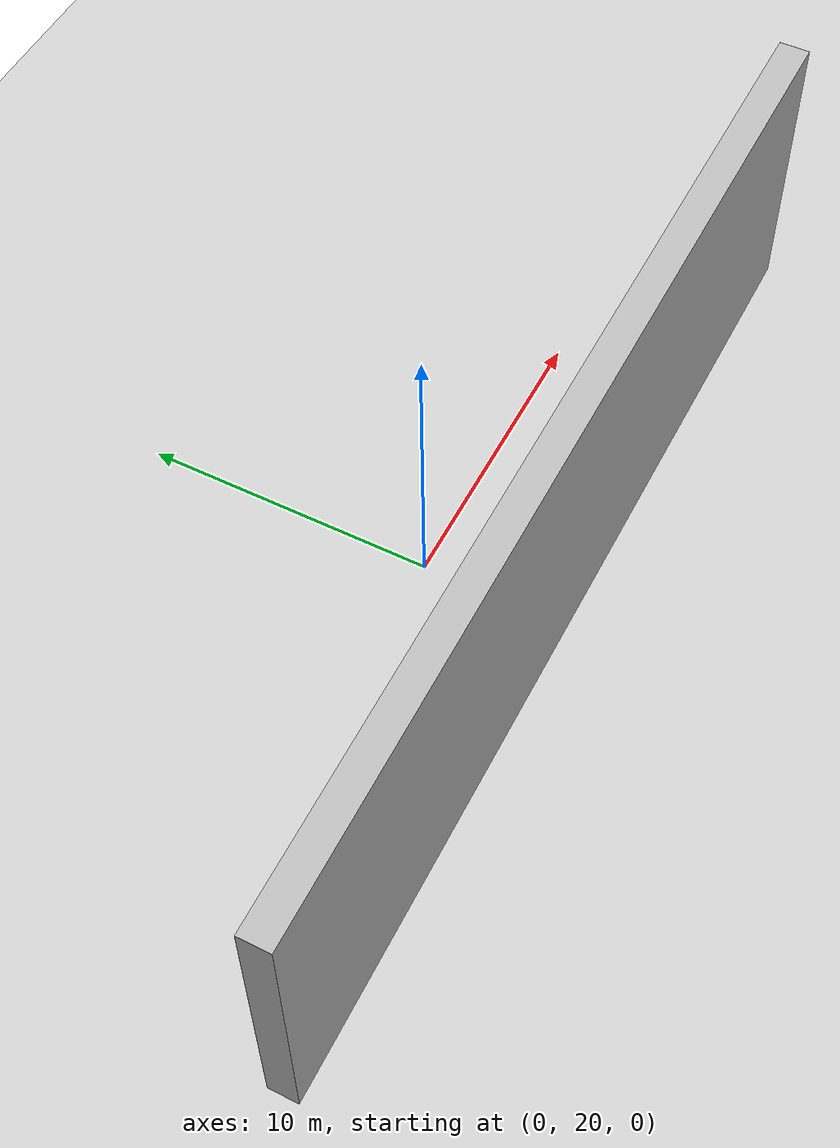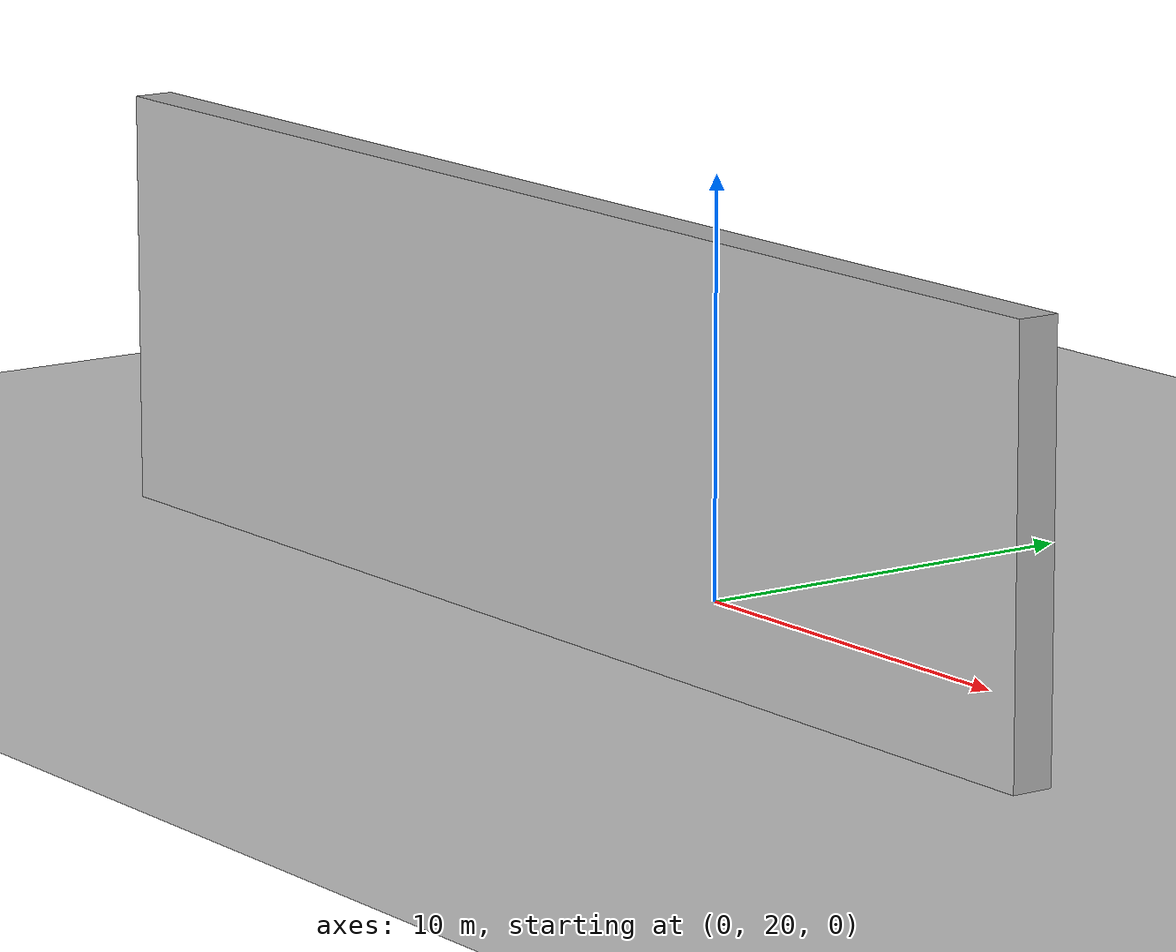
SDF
<?xml version="1.0"?>
<sdf version="1.5">
  <world name="default">
    <!-- A global light source -->
    <include>
      <uri>model://sun</uri>
    </include>
    <!-- A ground plane -->
    <include>
      <uri>model://ground_plane</uri>
    </include>

    <include>
      <uri>model://wall_chicken</uri>
      <pose>0 15.5 5 0 0 0</pose>
    </include>

    <include>
      <uri>model://asphalt_plane</uri>
    </include>
    <physics name="default_physics" default="0" type="ode">
      <gravity>0 0 -9.8066</gravity>
      <ode>
        <solver>
          <type>quick</type>
          <iters>10</iters>
          <sor>1.3</sor>
          <use_dynamic_moi_rescaling>0</use_dynamic_moi_rescaling>
        </solver>
        <constraints>
          <cfm>0</cfm>
          <erp>0.2</erp>
          <contact_max_correcting_vel>100</contact_max_correcting_vel>
          <contact_surface_layer>0.001</contact_surface_layer>
        </constraints>
      </ode>
      <max_step_size>0.004</max_step_size>
      <real_time_factor>1</real_time_factor>
      <real_time_update_rate>250</real_time_update_rate>
      <magnetic_field>6.0e-6 2.3e-5 -4.2e-5</magnetic_field>
    </physics>
    <spherical_coordinates>
      <surface_model>EARTH_WGS84</surface_model>
      <latitude_deg>-34.660019</latitude_deg>
      <longitude_deg>-58.468302</longitude_deg>
      <elevation>30.18</elevation>
    </spherical_coordinates>
  </world>
</sdf>

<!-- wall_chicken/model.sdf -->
<sdf version='1.7'>
  <model name='wall_chicken'>
    <link name='link'>
      <inertial>
        <mass>1</mass>
        <inertia>
          <ixx>0.166667</ixx>
          <ixy>0</ixy>
          <ixz>0</ixz>
          <iyy>0.166667</iyy>
          <iyz>0</iyz>
          <izz>0.166667</izz>
        </inertia>
        <pose>0 0 0 0 -0 0</pose>
      </inertial>
      <self_collide>0</self_collide>
      <enable_wind>0</enable_wind>
      <kinematic>0</kinematic>
      <pose>0 0 0 0 -0 0</pose>
      <gravity>1</gravity>
      <visual name='visual'>
        <geometry>
          <box>
            <size>34 1 10</size>
          </box>
        </geometry>
        <material>
          <script>
            <name>chicken</name>
            <uri>model://wall_chicken/materials/scripts</uri>
          </script>
        </material>
        <pose>0 0 0 0 -0 0</pose>
        <transparency>0</transparency>
        <cast_shadows>1</cast_shadows>
      </visual>
      <collision name='collision'>
        <laser_retro>0</laser_retro>
        <max_contacts>10</max_contacts>
        <pose>0 0 0 0 -0 0</pose>
        <geometry>
          <box>
            <size>34 1 10</size>
          </box>
        </geometry>
        <surface>
          <friction>
            <ode>
              <mu>1</mu>
              <mu2>1</mu2>
              <fdir1>0 0 0</fdir1>
              <slip1>0</slip1>
              <slip2>0</slip2>
            </ode>
            <torsional>
              <coefficient>1</coefficient>
              <patch_radius>0</patch_radius>
              <surface_radius>0</surface_radius>
              <use_patch_radius>1</use_patch_radius>
              <ode>
                <slip>0</slip>
              </ode>
            </torsional>
          </friction>
          <bounce>
            <restitution_coefficient>0</restitution_coefficient>
            <threshold>1e+06</threshold>
          </bounce>
          <contact>
            <collide_without_contact>0</collide_without_contact>
            <collide_without_contact_bitmask>1</collide_without_contact_bitmask>
            <collide_bitmask>1</collide_bitmask>
            <ode>
              <soft_cfm>0</soft_cfm>
              <soft_erp>0.2</soft_erp>
              <kp>1e+13</kp>
              <kd>1</kd>
              <max_vel>0.01</max_vel>
              <min_depth>0</min_depth>
            </ode>
            <bullet>
              <split_impulse>1</split_impulse>
              <split_impulse_penetration_threshold>-0.01</split_impulse_penetration_threshold>
              <soft_cfm>0</soft_cfm>
              <soft_erp>0.2</soft_erp>
              <kp>1e+13</kp>
              <kd>1</kd>
            </bullet>
          </contact>
        </surface>
      </collision>
    </link>
    <static>1</static>
    <allow_auto_disable>1</allow_auto_disable>
  </model>
</sdf>
